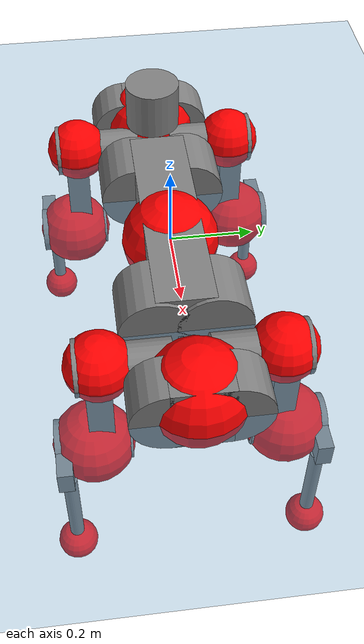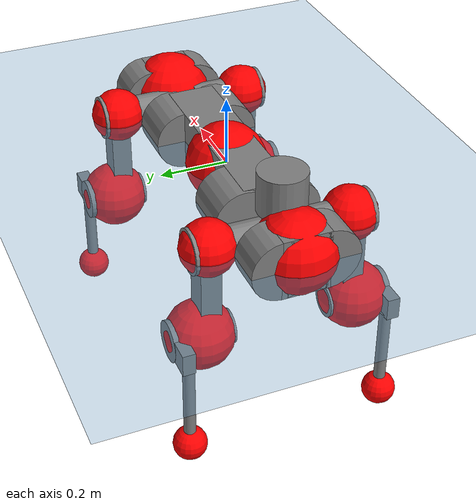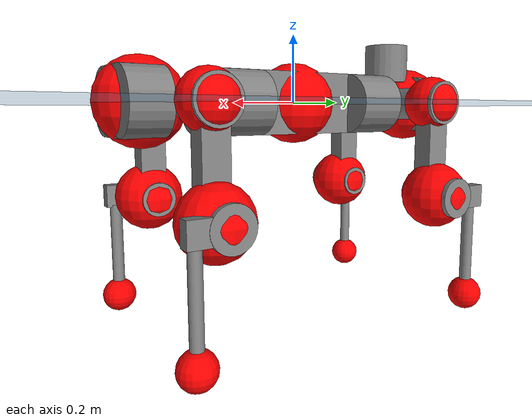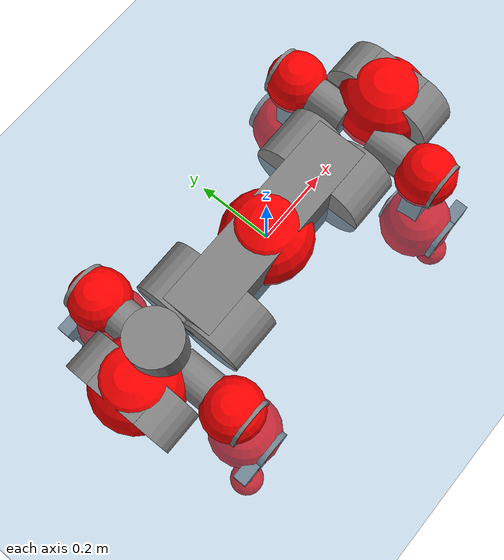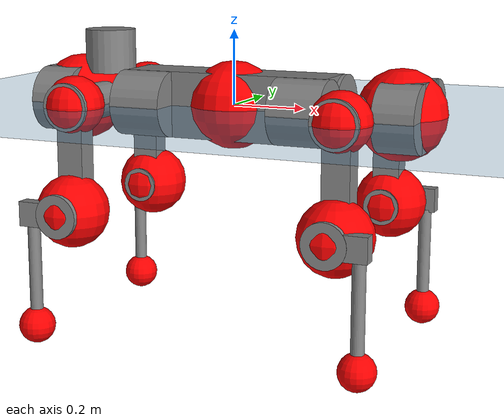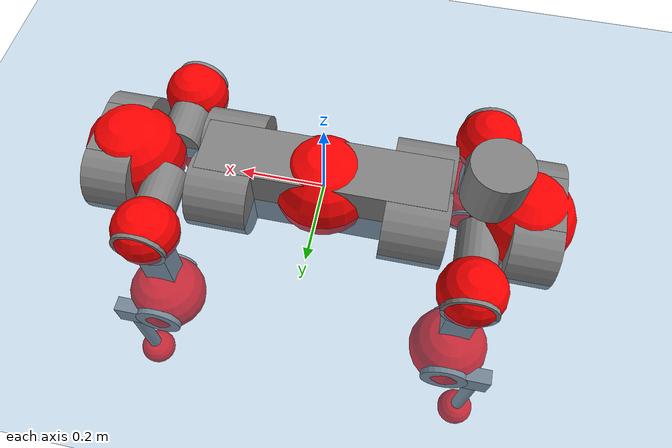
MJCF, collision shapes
<mujoco model="anymal_c">
  <compiler angle="radian" assetdir="assets" balanceinertia="true" inertiafromgeom="false"/>

  <option timestep="0.005" density="1.2" viscosity="2e-05"/>

  <size nkey="1"/>

  <visual>
    <quality shadowsize="8192"/>
    <map shadowclip="0.5"/>
  </visual>

  <default>
    <default class="/">
      <material specular="0" shininess="0.25"/>
      <geom contype="0" conaffinity="0" group="1" solref="-1000 -80"/>
      <site size="0.01 0.005 0.005" group="5"/>
      <general forcelimited="true" forcerange="-80 80" biastype="affine" gainprm="80" biasprm="0 -80 -2"/>
      <default class="anymal_c">
        <joint armature="0.01" damping="0.01" frictionloss="0.1"/>
        <default class="visual">
          <geom type="mesh" group="2"/>
          <default class="visual_zflip"/>
        </default>
        <default class="collision">
          <geom type="cylinder" group="3"/>
          <default class="foot">
            <geom size="0.03 0 0" type="sphere" condim="6" priority="1" friction="0.8 0.02 0.01" solimp="0.015 1 0.03"/>
          </default>
        </default>
      </default>
      <default class="reward_collision_sphere">
        <geom group="5" rgba="1 0 0 1"/>
      </default>
    </default>
  </default>

  <asset>
    <texture type="skybox" colorspace="auto" name="//unnamed_texture_0" builtin="gradient" rgb1="0.95 0.95 0.95" rgb2="0.95 0.95 0.95" width="100" height="600"/>
    <texture type="2d" colorspace="auto" name="texplane" builtin="checker" rgb1="0.345 0.575 0.748" rgb2="0.345 0.575 0.748" markrgb="1 1 1" width="512" height="512"/>
    <texture type="2d" colorspace="linear" name="base" file="base.png"/>
    <texture type="2d" colorspace="linear" name="top_shell" file="top_shell.png"/>
    <texture type="2d" colorspace="linear" name="bottom_shell" file="bottom_shell.png"/>
    <texture type="2d" colorspace="linear" name="remote" file="remote.png"/>
    <texture type="2d" colorspace="linear" name="hatch" file="hatch.png"/>
    <texture type="2d" colorspace="linear" name="handle" file="handle.png"/>
    <texture type="2d" colorspace="linear" name="face" file="face.png"/>
    <texture type="2d" colorspace="linear" name="battery" file="battery.png"/>
    <texture type="2d" colorspace="linear" name="lidar_cage" file="lidar_cage.png"/>
    <texture type="2d" colorspace="linear" name="depth_camera" file="depth_camera.png"/>
    <texture type="2d" colorspace="linear" name="wide_angle_camera" file="wide_angle_camera.png"/>
    <texture type="2d" colorspace="linear" name="lidar" file="lidar.png"/>
    <texture type="2d" colorspace="linear" name="drive" file="drive.png"/>
    <texture type="2d" colorspace="linear" name="hip_l" file="hip_l.png"/>
    <texture type="2d" colorspace="linear" name="shank_l" file="shank_l.png"/>
    <texture type="2d" colorspace="linear" name="foot" file="foot.png"/>
    <texture type="2d" colorspace="linear" name="thigh" file="thigh.png"/>
    <texture type="2d" colorspace="linear" name="shank_r" file="shank_r.png"/>
    <texture type="2d" colorspace="linear" name="hip_r" file="hip_r.png"/>
    <material name="MatPlane" class="/" texture="texplane" texuniform="true" texrepeat="2 2" specular="0.9" shininess="0.5"/>
    <material name="black_plastic" class="/" rgba="0.007 0.007 0.007 1"/>
    <material name="green" class="/" rgba="0.052 0.178 0.033 1"/>
    <material name="red" class="/" rgba="0.178 0.006 0.005 1"/>
    <material name="yellow" class="/" rgba="0.178 0.119 0.006 1"/>
    <material name="lwl" class="/" rgba="0.8 0.8 0.8 1"/>
    <material name="base" class="/" texture="base"/>
    <material name="top_shell" class="/" texture="top_shell"/>
    <material name="bottom_shell" class="/" texture="bottom_shell"/>
    <material name="hip_l" class="/" texture="hip_l"/>
    <material name="thigh" class="/" texture="thigh"/>
    <material name="shank_l" class="/" texture="shank_l"/>
    <material name="foot" class="/" texture="foot"/>
    <material name="hip_r" class="/" texture="hip_r"/>
    <material name="shank" class="/" texture="shank_r"/>
    <material name="hatch" class="/" texture="hatch"/>
    <material name="remote" class="/" texture="remote"/>
    <material name="handle" class="/" texture="handle"/>
    <material name="face" class="/" texture="face"/>
    <material name="depth_camera" class="/" texture="depth_camera"/>
    <material name="wide_angle_camera" class="/" texture="wide_angle_camera"/>
    <material name="battery" class="/" texture="battery"/>
    <material name="lidar_cage" class="/" texture="lidar_cage"/>
    <material name="lidar" class="/" texture="lidar"/>
    <material name="drive" class="/" texture="drive"/>
    <mesh name="base_0" class="/" file="base_0.obj"/>
    <mesh name="base_1" class="/" file="base_1.obj"/>
    <mesh name="base_2" class="/" file="base_2.obj"/>
    <mesh name="base_3" class="/" file="base_3.obj"/>
    <mesh name="base_4" class="/" file="base_4.obj"/>
    <mesh name="base_5" class="/" file="base_5.obj"/>
    <mesh name="top_shell" class="/" file="top_shell.obj"/>
    <mesh name="bottom_shell" class="/" file="bottom_shell.obj"/>
    <mesh name="remote" class="/" file="remote.obj"/>
    <mesh name="handle" class="/" file="handle.obj"/>
    <mesh name="face" class="/" file="face.obj"/>
    <mesh name="wide_angle_camera" class="/" file="wide_angle_camera.obj"/>
    <mesh name="depth_camera" class="/" file="depth_camera.obj"/>
    <mesh name="battery" class="/" file="battery.obj"/>
    <mesh name="lidar_cage" class="/" file="lidar_cage.obj"/>
    <mesh name="lidar" class="/" file="lidar.obj"/>
    <mesh name="drive" class="/" file="drive.obj"/>
    <mesh name="hip_l" class="/" file="hip_l.obj"/>
    <mesh name="thigh" class="/" file="thigh.obj"/>
    <mesh name="shank_l" class="/" file="shank_l.obj"/>
    <mesh name="foot" class="/" file="foot.obj"/>
    <mesh name="hip_r" class="/" file="hip_r.obj"/>
    <mesh name="hatch" class="/" file="hatch.obj"/>
    <mesh name="shank_r" class="/" file="shank_r.obj"/>
  </asset>

  <worldbody>
    <geom name="floor" class="/" size="100 100 0.125" type="plane" group="0" material="MatPlane"/>
    <light name="toplight_shadow" class="/" pos="0 0 5" dir="0.0990148 0.0990148 -0.990148" type="directional" ambient="0.04 0.04 0.04" diffuse="0.55 0.55 0.55" specular="0.12 0.12 0.12"/>
    <light name="toplight_fill" class="/" pos="0 0 5" dir="0.0990148 0.0990148 -0.990148" type="directional" castshadow="false" ambient="0.04 0.04 0.04" diffuse="0.3 0.3 0.3" specular="0.08 0.08 0.08"/>
    <body name="trunk" childclass="anymal_c" pos="6.20316e-05 3.13342e-05 0.000789979" quat="1 -1.85199e-05 -3.78091e-05 7.901e-06">
      <inertial pos="0.00213369 0.000309904 0.0475711" quat="0.500064 0.499981 0.499943 0.500012" mass="18.4737" diaginertia="0.743933 0.457163 0.202249"/>
      <joint name="//unnamed_joint_0" type="free" armature="0" damping="0" frictionloss="0"/>
      <geom name="//unnamed_geom_1" class="visual" material="green" mesh="base_0"/>
      <geom name="//unnamed_geom_2" class="visual" material="yellow" mesh="base_1"/>
      <geom name="//unnamed_geom_3" class="visual" material="red" mesh="base_2"/>
      <geom name="//unnamed_geom_4" class="visual" material="black_plastic" mesh="base_3"/>
      <geom name="//unnamed_geom_5" class="visual" material="lwl" mesh="base_4"/>
      <geom name="//unnamed_geom_6" class="visual" material="base" mesh="base_5"/>
      <geom name="trunk_1" class="collision" size="0.285282 0.0688612 0.0885358" type="box"/>
      <geom name="trunk_2" class="collision" size="0.0885358 0.0713205" pos="0.223847 0.0657052 0" quat="0.707107 0 0.707107 0"/>
      <geom name="trunk_3" class="collision" size="0.0885358 0.0713205" pos="-0.223847 0.0657052 0" quat="0.707107 0 0.707107 0"/>
      <geom name="trunk_4" class="collision" size="0.0885358 0.0713205" pos="0.223847 -0.0657052 0" quat="0.707107 0 0.707107 0"/>
      <geom name="trunk_5" class="collision" size="0.0885358 0.0713205" pos="-0.223847 -0.0657052 0" quat="0.707107 0 0.707107 0"/>
      <geom name="//unnamed_geom_12" class="visual" material="top_shell" mesh="top_shell"/>
      <geom name="//unnamed_geom_13" class="visual" material="bottom_shell" mesh="bottom_shell"/>
      <geom name="//unnamed_geom_14" class="visual" material="remote" mesh="remote"/>
      <geom name="//unnamed_geom_15" class="visual" material="handle" mesh="handle"/>
      <geom name="//unnamed_geom_16" class="visual" pos="0.426597 0 0" quat="1 0 0 0" material="face" mesh="face"/>
      <geom name="trunk_6" class="collision" size="0.0541052 0.0688612 0.0885358" pos="0.483202 0 0" type="box"/>
      <geom name="//unnamed_geom_18" class="collision" size="0.0885358 0.0541052" pos="0.483202 0.0657052 0" quat="0.707107 0 0.707107 0"/>
      <geom name="//unnamed_geom_19" class="collision" size="0.0885358 0.0541052" pos="0.483202 -0.0657052 0" quat="0.707107 0 0.707107 0"/>
      <geom name="//unnamed_geom_20" class="visual" pos="0.475121 0 -0.0283661" quat="0.965926 0 0.258819 0" material="depth_camera" mesh="depth_camera"/>
      <geom name="//unnamed_geom_21" class="visual" pos="0.527971 0 0.014721" material="wide_angle_camera" mesh="wide_angle_camera"/>
      <geom name="//unnamed_geom_22" class="visual_zflip" pos="-0.426597 0 0" quat="0 0 0 1" material="face" mesh="face"/>
      <geom name="trunk_7" class="collision" size="0.0541052 0.0688612 0.0885358" pos="-0.483202 0 0" quat="0 0 0 1" type="box"/>
      <geom name="//unnamed_geom_24" class="collision" size="0.0885358 0.0541052" pos="-0.483202 -0.0657052 0" quat="0 -0.707107 0 0.707107"/>
      <geom name="//unnamed_geom_25" class="collision" size="0.0885358 0.0541052" pos="-0.483202 0.0657052 0" quat="0 -0.707107 0 0.707107"/>
      <geom name="//unnamed_geom_26" class="visual" pos="-0.475121 0 -0.0283661" quat="0 -0.258819 0 0.965926" material="depth_camera" mesh="depth_camera"/>
      <geom name="//unnamed_geom_27" class="visual_zflip" pos="-0.527971 0 0.014721" quat="0 0 0 1" material="wide_angle_camera" mesh="wide_angle_camera"/>
      <geom name="//unnamed_geom_28" class="visual" material="battery" mesh="battery"/>
      <geom name="//unnamed_geom_29" class="visual" pos="0 0.0705788 0.028915" quat="0.683013 -0.183013 0.183013 0.683013" material="depth_camera" mesh="depth_camera"/>
      <geom name="//unnamed_geom_30" class="visual" pos="0 -0.0705788 0.028915" quat="0.683013 0.183013 0.183013 -0.683013" material="depth_camera" mesh="depth_camera"/>
      <geom name="//unnamed_geom_31" class="visual" pos="-0.374623 0 0.0722774" quat="1 0 0 0" material="lidar_cage" mesh="lidar_cage"/>
      <geom name="trunk_8" class="collision" size="0.0688612 0.0590239" pos="-0.374623 0 0.131279"/>
      <geom name="//unnamed_geom_33" class="visual" pos="-0.374623 -3.55702e-05 0.139835" quat="0.707107 0 0 -0.707107" material="lidar" mesh="lidar"/>
      <geom name="//unnamed_geom_34" class="visual" pos="0.308652 0.097635 -7.71442e-10" quat="0.258819 0.965926 0 0" material="drive" mesh="drive"/>
      <geom name="//unnamed_geom_35" class="visual" pos="0.308652 -0.097635 7.71442e-10" quat="0.258819 -0.965926 0 0" material="drive" mesh="drive"/>
      <geom name="//unnamed_geom_36" class="visual" pos="-0.308652 0.097635 7.71442e-10" quat="0 0 0.965926 -0.258819" material="drive" mesh="drive"/>
      <geom name="//unnamed_geom_37" class="visual" pos="-0.308652 -0.097635 -7.71442e-10" quat="0 0 -0.965926 -0.258819" material="drive" mesh="drive"/>
      <geom name="//unnamed_geom_38" class="visual" pos="0.119385 0 0.0717857" quat="1 0 0 0" material="hatch" mesh="hatch"/>
      <geom name="//unnamed_geom_39" class="reward_collision_sphere" size="0.118048"/>
      <geom name="//unnamed_geom_40" class="reward_collision_sphere" size="0.118048" pos="0.463133 0 0"/>
      <geom name="//unnamed_geom_41" class="reward_collision_sphere" size="0.118048" pos="-0.463133 0 0"/>
      <site name="imu" pos="0.255778 0.0121802 0.0444224" size="0.00983732"/>
      <camera name="track" pos="0 -1.87729 0" quat="0.707107 0.707107 0 0" mode="trackcom"/>
      <camera name="ego_camera" pos="0.463133 0 -0.0393346" quat="-0.5 -0.5 0.5 0.5"/>
      <body name="LF_HIP" pos="0.308916 0.0983021 0.000266453" quat="0.258864 0.965914 7.43422e-05 -5.95775e-05">
        <inertial pos="0.0585487 -0.0141354 -0.00720862" quat="-0.126662 0.7096 -0.135415 0.67977" mass="2.62669" diaginertia="0.00674387 0.00361023 0.002983"/>
        <joint name="LF_HAA" pos="0 0 0" axis="0.999999 -4.49222e-05 0.00138018" range="-0.709607 0.491528" armature="0.00941275" damping="0.00602929" frictionloss="0.0998869"/>
        <geom name="//unnamed_geom_42" class="visual" pos="0 -4.53805e-05 7.4537e-06" quat="0.258819 -0.965926 0 0" material="hip_l" mesh="hip_l"/>
        <geom name="//unnamed_geom_43" class="visual" pos="0.0616481 -0.0735236 -0.0427797" quat="0.183013 -0.683013 0.683013 0.183013" material="drive" mesh="drive"/>
        <geom name="//unnamed_geom_44" class="collision" size="0.0491866 0.0688612" pos="0.0616481 -0.011226 -0.00679014" quat="-0.353553 -0.612372 0.612372 -0.353553"/>
        <body name="LF_THIGH" pos="0.061965 -0.0683805 -0.0417329" quat="0.182973 -0.683094 0.682935 0.183039">
          <inertial pos="0.0318705 0.00010443 -0.240688" quat="0.993188 -0.00499588 -0.0797315 0.0848282" mass="2.9377" diaginertia="0.0350703 0.0216199 0.00380998"/>
          <joint name="LF_HFE" pos="0 0 0" axis="1 2.33235e-05 -0.000692363" stiffness="0.00683272" range="-3.12642 3.12801" armature="0.0100615" damping="0.00807978" frictionloss="0.0978851"/>
          <geom name="//unnamed_geom_45" class="visual" pos="0.00180136 2.83853e-06 0" quat="0.707107 0 0 -0.707107" material="thigh" mesh="thigh"/>
          <geom name="//unnamed_geom_46" class="collision" size="0.0639426 0.0393493" pos="0.0411673 0 0" quat="0.5 0.5 -0.5 -0.5"/>
          <geom name="//unnamed_geom_47" class="collision" size="0.0368899 0.0295119 0.139015" pos="0.0308755 0 -0.138963" quat="0.707107 0 0 -0.707107" type="box"/>
          <geom name="//unnamed_geom_48" class="visual" pos="0.103227 0 -0.280259" quat="1 0 0 0" material="drive" mesh="drive"/>
          <geom name="//unnamed_geom_49" class="collision" size="0.0491866 0.0688612" pos="0.0311843 0 -0.280259" quat="0.707107 0 0.707107 0"/>
          <geom name="//unnamed_geom_50" class="reward_collision_sphere" size="0.0786985" pos="0.0257296 0 0"/>
          <body name="LF_SHANK" pos="0.103195 -0.00117823 -0.28118" quat="1 0.000113021 0.00016482 3.22168e-05">
            <inertial pos="0.00590121 -0.0574469 -0.0792603" quat="0.992949 -0.115814 -0.00101192 -0.025257" mass="0.566135" diaginertia="0.0117447 0.00673346 0.00103418"/>
            <joint name="LF_KFE" pos="0 0 0" axis="0.999987 -0.00162988 0.0048703" range="-3.13779 3.13036" armature="0.00995011" damping="0.00694095" frictionloss="0.102207"/>
            <geom name="//unnamed_geom_51" class="visual" pos="0.000587385 0.00313197 0" quat="0.707107 0 0 -0.707107" material="shank_l" mesh="shank_l"/>
            <geom name="LF_kfe_act" class="collision" size="0.0590239 0.0196746" pos="0.0205837 0 0" quat="0.5 0.5 -0.5 -0.5"/>
            <geom name="//unnamed_geom_53" class="collision" size="0.0565636 0.0332009 0.0186909" pos="0.0205837 -0.0539712 0" quat="0.5 0.5 -0.5 -0.5" type="box"/>
            <geom name="//unnamed_geom_54" class="visual" pos="0.0134307 -0.0815445 -0.332348" quat="0.382683 0 0 -0.92388" material="foot" mesh="foot"/>
            <geom name="LF_calf" class="collision" size="0.0172153 0.138954" pos="0.0134308 -0.0825538 -0.166174" quat="0.707107 0 0 -0.707107"/>
            <geom name="LF_foot" class="foot" size="0.0305054" pos="0.0134308 -0.0825538 -0.310222" quat="0.707107 0 0 -0.707107"/>
            <geom name="//unnamed_geom_57" class="reward_collision_sphere" size="0.0983732" pos="-0.0514592 0 0"/>
            <geom name="//unnamed_geom_58" class="reward_collision_sphere" size="0.0491866" pos="0.0134308 -0.0825538 -0.310222"/>
            <site name="LF_foot" class="foot" pos="0.0134308 -0.0825538 -0.310222" quat="0.707107 0 0 -0.707107" size="0.00983732"/>
          </body>
        </body>
      </body>
      <body name="RF_HIP" pos="0.308921 -0.0972634 0.000631429" quat="0.258591 -0.965987 -5.46955e-05 -0.000237416">
        <inertial pos="0.0584789 0.015152 -0.00869012" quat="0.135217 0.678992 0.127936 0.710154" mass="2.65105" diaginertia="0.00678443 0.00361521 0.00302725"/>
        <joint name="RF_HAA" pos="0 0 0" axis="1 -0.000592983 5.22784e-06" stiffness="0.000231853" range="-0.504892 0.717667" armature="0.00976339" damping="0.011543" frictionloss="0.102831"/>
        <geom name="//unnamed_geom_59" class="visual" pos="0 4.53801e-05 7.45368e-06" quat="0.258819 0.965926 0 0" material="hip_r" mesh="hip_r"/>
        <geom name="//unnamed_geom_60" class="visual" pos="0.0616481 0.0735236 -0.0427797" quat="0.183013 0.683013 0.683013 -0.183013" material="drive" mesh="drive"/>
        <geom name="//unnamed_geom_61" class="collision" size="0.0491866 0.0688612" pos="0.0616481 0.011226 -0.00679014" quat="-0.353553 0.612372 0.612372 0.353553"/>
        <body name="RF_THIGH" pos="0.0628332 0.0673489 -0.0417165" quat="0.182993 0.683085 0.682939 -0.18304">
          <inertial pos="0.0317557 -0.000298124 -0.241345" quat="0.992753 -0.00520807 -0.0810229 0.0886023" mass="2.98419" diaginertia="0.0352072 0.0221672 0.00391495"/>
          <joint name="RF_HFE" pos="0 0 0" axis="0.999995 0.00317474 -0.000319923" stiffness="0.00573513" range="-3.1232 3.13424" armature="0.00988908" damping="0.00965449" frictionloss="0.0960306"/>
          <geom name="//unnamed_geom_62" class="visual" pos="0.00180136 2.83853e-06 0" quat="0.707107 0 0 -0.707107" material="thigh" mesh="thigh"/>
          <geom name="//unnamed_geom_63" class="collision" size="0.0639426 0.0393493" pos="0.0411673 0 0" quat="0.5 0.5 0.5 0.5"/>
          <geom name="//unnamed_geom_64" class="collision" size="0.0368899 0.0295119 0.139015" pos="0.0308755 0 -0.138963" quat="0.707107 0 0 0.707107" type="box"/>
          <geom name="//unnamed_geom_65" class="visual" pos="0.103227 0 -0.280259" quat="1 0 0 0" material="drive" mesh="drive"/>
          <geom name="//unnamed_geom_66" class="collision" size="0.0491866 0.0688612" pos="0.0311843 0 -0.280259" quat="0.707107 0 0.707107 0"/>
          <geom name="//unnamed_geom_67" class="reward_collision_sphere" size="0.0786985" pos="0.0257296 0 0"/>
          <body name="RF_SHANK" pos="0.103183 0.000559832 -0.280654" quat="1 -0.000118229 0.000159653 5.67901e-05">
            <inertial pos="0.00597992 0.0570491 -0.0783506" quat="0.992953 0.11562 4.95782e-05 0.0260043" mass="0.551615" diaginertia="0.0115858 0.0067211 0.0010273"/>
            <joint name="RF_KFE" pos="0 0 0" axis="0.999966 -0.00755684 -0.0032508" stiffness="0.00127869" range="-3.13294 3.14269" armature="0.00992033" damping="0.0095979" frictionloss="0.093531"/>
            <geom name="//unnamed_geom_68" class="visual" pos="0.000587382 -0.00313196 0" quat="0.707107 0 0 0.707107" material="shank" mesh="shank_r"/>
            <geom name="RF_kfe_act" class="collision" size="0.0590239 0.0196746" pos="0.0205837 0 0" quat="0.5 0.5 0.5 0.5"/>
            <geom name="//unnamed_geom_70" class="collision" size="0.0565636 0.0332009 0.0186909" pos="0.0205837 0.0539712 0" quat="0.5 0.5 0.5 0.5" type="box"/>
            <geom name="//unnamed_geom_71" class="visual" pos="0.013431 0.0815445 -0.332348" quat="0.382683 0 0 0.92388" material="foot" mesh="foot"/>
            <geom name="RF_calf" class="collision" size="0.0172153 0.138954" pos="0.0134308 0.0825538 -0.166174" quat="0.707107 0 0 0.707107"/>
            <geom name="RF_foot" class="foot" size="0.0300626" pos="0.0134308 0.0825538 -0.310222" quat="0.707107 0 0 0.707107"/>
            <geom name="//unnamed_geom_74" class="reward_collision_sphere" size="0.0983732" pos="-0.0514592 0 0"/>
            <geom name="//unnamed_geom_75" class="reward_collision_sphere" size="0.0491866" pos="0.0134308 0.0825538 -0.310222"/>
            <site name="RF_foot" class="foot" pos="0.0134308 0.0825538 -0.310222" quat="0.707107 0 0 0.707107" size="0.00983732"/>
          </body>
        </body>
      </body>
      <body name="LH_HIP" pos="-0.308675 0.0976618 0.000134735" quat="1.24948e-05 0.000117555 0.965931 -0.258801">
        <inertial pos="0.0591809 0.0143309 -0.00782286" quat="0.138573 0.680232 0.12325 0.709149" mass="2.61063" diaginertia="0.00676306 0.00354468 0.0030468"/>
        <joint name="LH_HAA" pos="0 0 0" axis="0.999986 -0.00332112 0.00415542" range="-0.483777 0.735623" armature="0.00986807" damping="0.0134002" frictionloss="0.0944662"/>
        <geom name="//unnamed_geom_76" class="visual" pos="0 4.53801e-05 7.45368e-06" quat="-0.258819 -0.965926 0 0" material="hip_r" mesh="hip_r"/>
        <geom name="//unnamed_geom_77" class="visual" pos="0.0616481 0.0735236 -0.0427797" quat="0.183013 0.683013 0.683013 -0.183013" material="drive" mesh="drive"/>
        <geom name="//unnamed_geom_78" class="collision" size="0.0491866 0.0688612" pos="0.0616481 0.011226 -0.00679014" quat="-0.353553 0.612372 0.612372 0.353553"/>
        <body name="LH_THIGH" pos="0.0610769 0.0689168 -0.0417059" quat="0.183059 0.683098 0.682995 -0.182716">
          <inertial pos="0.031768 0.000713128 -0.241364" quat="0.992836 -0.0038512 -0.0808146 0.0879302" mass="2.94988" diaginertia="0.0348601 0.0221019 0.00382688"/>
          <joint name="LH_HFE" pos="0 0 0" axis="1 -0.000572917 0.000487165" range="-3.1438 3.1381" armature="0.00988438" damping="0.00582504" frictionloss="0.0985954"/>
          <geom name="//unnamed_geom_79" class="visual" pos="0.00180136 2.83853e-06 0" quat="0.707107 0 0 -0.707107" material="thigh" mesh="thigh"/>
          <geom name="//unnamed_geom_80" class="collision" size="0.0639426 0.0393493" pos="0.0411673 0 0" quat="0.5 0.5 -0.5 -0.5"/>
          <geom name="//unnamed_geom_81" class="collision" size="0.0368899 0.0295119 0.139015" pos="0.0308755 0 -0.138963" quat="0.707107 0 0 -0.707107" type="box"/>
          <geom name="//unnamed_geom_82" class="visual" pos="0.103227 0 -0.280259" quat="1 0 0 0" material="drive" mesh="drive"/>
          <geom name="//unnamed_geom_83" class="collision" size="0.0491866 0.0688612" pos="0.0311843 0 -0.280259" quat="0.707107 0 0.707107 0"/>
          <geom name="//unnamed_geom_84" class="reward_collision_sphere" size="0.0786985" pos="0.0257296 0 0"/>
          <body name="LH_SHANK" pos="0.10309 -0.000390932 -0.280675" quat="1 -0.000288836 -6.97016e-05 -0.000184235">
            <inertial pos="0.00504573 0.057494 -0.0784189" quat="0.992945 0.115816 -0.00113145 0.0253994" mass="0.568602" diaginertia="0.0118908 0.00684645 0.00105989"/>
            <joint name="LH_KFE" pos="0 0 0" axis="0.999995 -0.00322827 -0.000100553" range="-3.14518 3.11597" armature="0.00993684" damping="0.00587655" frictionloss="0.0948613"/>
            <geom name="//unnamed_geom_85" class="visual" pos="0.000587382 -0.00313196 0" quat="-0.707107 0 0 -0.707107" material="shank" mesh="shank_r"/>
            <geom name="LH_kfe_act" class="collision" size="0.0590239 0.0196746" pos="0.0205837 0 0" quat="0.5 0.5 -0.5 -0.5"/>
            <geom name="//unnamed_geom_87" class="collision" size="0.0565636 0.0332009 0.0186909" pos="0.0205837 0.0539712 0" quat="0.5 0.5 -0.5 -0.5" type="box"/>
            <geom name="//unnamed_geom_88" class="visual" pos="0.013431 0.0815445 -0.332348" quat="-0.382683 0 0 -0.92388" material="foot" mesh="foot"/>
            <geom name="LH_calf" class="collision" size="0.0172153 0.138954" pos="0.0134308 0.0825538 -0.166174" quat="0.707107 0 0 -0.707107"/>
            <geom name="LH_foot" class="foot" size="0.0302021" pos="0.0134308 0.0825538 -0.310222" quat="0.707107 0 0 -0.707107"/>
            <geom name="//unnamed_geom_91" class="reward_collision_sphere" size="0.0983732" pos="-0.0514592 0 0"/>
            <geom name="//unnamed_geom_92" class="reward_collision_sphere" size="0.0491866" pos="0.0134308 0.0825538 -0.310222"/>
            <site name="LH_foot" class="foot" pos="0.0134308 0.0825538 -0.310222" quat="0.707107 0 0 -0.707107" size="0.00983732"/>
          </body>
        </body>
      </body>
      <body name="RH_HIP" pos="-0.308742 -0.0983678 0.000854816" quat="-7.81891e-06 -9.92462e-06 -0.965922 -0.258833">
        <inertial pos="0.0588158 -0.0151698 -0.0077211" quat="-0.123653 0.70929 -0.134027 0.680921" mass="2.66509" diaginertia="0.00676009 0.00365744 0.00305664"/>
        <joint name="RH_HAA" pos="0 0 0" axis="1 0.000194409 0.000253713" range="-0.720293 0.499702" armature="0.00986302" damping="0.00978467" frictionloss="0.0939053"/>
        <geom name="//unnamed_geom_93" class="visual" pos="0 -4.53805e-05 7.4537e-06" quat="-0.258819 0.965926 0 0" material="hip_l" mesh="hip_l"/>
        <geom name="//unnamed_geom_94" class="visual" pos="0.0616481 -0.0735236 -0.0427797" quat="-0.183013 0.683013 -0.683013 -0.183013" material="drive" mesh="drive"/>
        <geom name="//unnamed_geom_95" class="collision" size="0.0491866 0.0688612" pos="0.0616481 -0.011226 -0.00679014" quat="0.353553 0.612372 -0.612372 0.353553"/>
        <body name="RH_THIGH" pos="0.0613309 -0.0683402 -0.0422827" quat="-0.182995 0.68302 -0.683005 -0.18303">
          <inertial pos="0.0319745 0.000986842 -0.242333" quat="0.992932 -0.00413011 -0.081026 0.0866254" mass="2.88945" diaginertia="0.0346013 0.0214732 0.00380438"/>
          <joint name="RH_HFE" pos="0 0 0" axis="0.999989 0.00406406 -0.00243657" range="-3.14961 3.13971" armature="0.0103603" damping="0.0080825" frictionloss="0.0990845"/>
          <geom name="//unnamed_geom_96" class="visual" pos="0.00180136 2.83853e-06 0" quat="0.707107 0 0 -0.707107" material="thigh" mesh="thigh"/>
          <geom name="//unnamed_geom_97" class="collision" size="0.0639426 0.0393493" pos="0.0411673 0 0" quat="0.5 0.5 0.5 0.5"/>
          <geom name="//unnamed_geom_98" class="collision" size="0.0368899 0.0295119 0.139015" pos="0.0308755 0 -0.138963" quat="0.707107 0 0 0.707107" type="box"/>
          <geom name="//unnamed_geom_99" class="visual" pos="0.103227 0 -0.280259" quat="1 0 0 0" material="drive" mesh="drive"/>
          <geom name="//unnamed_geom_100" class="collision" size="0.0491866 0.0688612" pos="0.0311843 0 -0.280259" quat="0.707107 0 0.707107 0"/>
          <geom name="//unnamed_geom_101" class="reward_collision_sphere" size="0.0786985" pos="0.0257296 0 0"/>
          <body name="RH_SHANK" pos="0.103605 0.00104957 -0.280437" quat="1 -1.42227e-05 -2.45984e-06 0.000302315">
            <inertial pos="0.0049349 -0.0575622 -0.0792378" quat="0.992835 -0.116083 -0.0019301 -0.0282881" mass="0.564533" diaginertia="0.0119202 0.00678103 0.00105309"/>
            <joint name="RH_KFE" pos="0 0 0" axis="0.999991 0.00319882 -0.00260159" range="-3.13313 3.13499" armature="0.0099568" damping="0.00864287" frictionloss="0.0998701"/>
            <geom name="//unnamed_geom_102" class="visual" pos="0.000587385 0.00313197 0" quat="0.707107 0 0 -0.707107" material="shank_l" mesh="shank_l"/>
            <geom name="RH_kfe_act" class="collision" size="0.0590239 0.0196746" pos="0.0205837 0 0" quat="0.5 0.5 0.5 0.5"/>
            <geom name="//unnamed_geom_104" class="collision" size="0.0565636 0.0332009 0.0186909" pos="0.0205837 -0.0539712 0" quat="0.5 0.5 0.5 0.5" type="box"/>
            <geom name="//unnamed_geom_105" class="visual" pos="0.0134307 -0.0815445 -0.332348" quat="0.382683 0 0 -0.92388" material="foot" mesh="foot"/>
            <geom name="RH_calf" class="collision" size="0.0172153 0.138954" pos="0.0134308 -0.0825538 -0.166174" quat="0.707107 0 0 0.707107"/>
            <geom name="RH_foot" class="foot" size="0.0262121" pos="0.0134308 -0.0825538 -0.310222" quat="0.707107 0 0 0.707107"/>
            <geom name="//unnamed_geom_108" class="reward_collision_sphere" size="0.0983732" pos="-0.0514592 0 0"/>
            <geom name="//unnamed_geom_109" class="reward_collision_sphere" size="0.0491866" pos="0.0134308 -0.0825538 -0.310222"/>
            <site name="RH_foot" class="foot" pos="0.0134308 -0.0825538 -0.310222" quat="0.707107 0 0 0.707107" size="0.00983732"/>
          </body>
        </body>
      </body>
    </body>
  </worldbody>

  <contact>
    <pair class="/" geom1="floor" geom2="LF_foot" name="//unnamed_contact_0"/>
    <pair class="/" geom1="floor" geom2="RF_foot" name="//unnamed_contact_1"/>
    <pair class="/" geom1="floor" geom2="LH_foot" name="//unnamed_contact_2"/>
    <pair class="/" geom1="floor" geom2="RH_foot" name="//unnamed_contact_3"/>
  </contact>

  <actuator>
    <general name="LF_HAA" class="/" joint="LF_HAA" forcerange="-81.8198 81.8198" gainprm="79.6168" biasprm="0 -79.6168 -1.90028"/>
    <general name="LF_HFE" class="/" joint="LF_HFE" forcerange="-76.0492 76.0492" gainprm="79.6168" biasprm="0 -79.6168 -1.90028"/>
    <general name="LF_KFE" class="/" joint="LF_KFE" forcerange="-80.111 80.111" gainprm="79.6168" biasprm="0 -79.6168 -1.90028"/>
    <general name="RF_HAA" class="/" joint="RF_HAA" forcerange="-78.2691 78.2691" gainprm="79.6168" biasprm="0 -79.6168 -1.90028"/>
    <general name="RF_HFE" class="/" joint="RF_HFE" forcerange="-78.5089 78.5089" gainprm="79.6168" biasprm="0 -79.6168 -1.90028"/>
    <general name="RF_KFE" class="/" joint="RF_KFE" forcerange="-80.5259 80.5259" gainprm="79.6168" biasprm="0 -79.6168 -1.90028"/>
    <general name="LH_HAA" class="/" joint="LH_HAA" forcerange="-76.5821 76.5821" gainprm="79.6168" biasprm="0 -79.6168 -1.90028"/>
    <general name="LH_HFE" class="/" joint="LH_HFE" forcerange="-78.9091 78.9091" gainprm="79.6168" biasprm="0 -79.6168 -1.90028"/>
    <general name="LH_KFE" class="/" joint="LH_KFE" forcerange="-81.4786 81.4786" gainprm="79.6168" biasprm="0 -79.6168 -1.90028"/>
    <general name="RH_HAA" class="/" joint="RH_HAA" forcerange="-76.7857 76.7857" gainprm="79.6168" biasprm="0 -79.6168 -1.90028"/>
    <general name="RH_HFE" class="/" joint="RH_HFE" forcerange="-77.9425 77.9425" gainprm="79.6168" biasprm="0 -79.6168 -1.90028"/>
    <general name="RH_KFE" class="/" joint="RH_KFE" forcerange="-77.4032 77.4032" gainprm="79.6168" biasprm="0 -79.6168 -1.90028"/>
  </actuator>

  <sensor>
    <gyro site="imu" name="imu_angular_velocity"/>
    <velocimeter site="imu" name="imu_linear_velocity"/>
    <framelinvel objtype="site" objname="LF_foot" name="LF_foot_global_linear_velocity"/>
    <framelinvel objtype="site" objname="RF_foot" name="RF_foot_global_linear_velocity"/>
    <framelinvel objtype="site" objname="LH_foot" name="LH_foot_global_linear_velocity"/>
    <framelinvel objtype="site" objname="RH_foot" name="RH_foot_global_linear_velocity"/>
  </sensor>

  <keyframe>
    <key name="home" qpos="0 0 0.55 1 0 0 0 0 0.4 -0.8 0 -0.4 0.8 0 -0.4 0.8 0 0.4 -0.8"/>
  </keyframe>
</mujoco>
